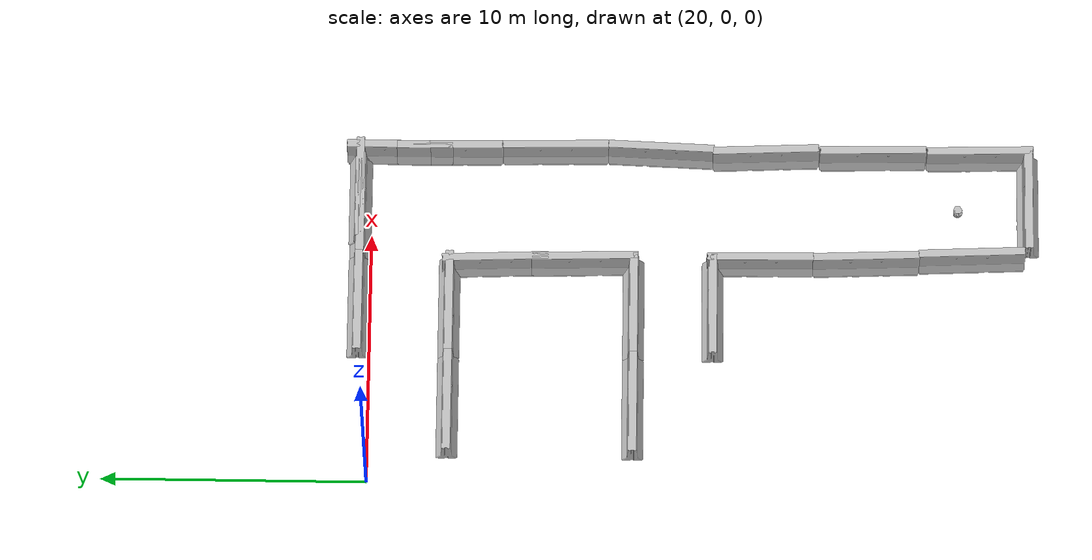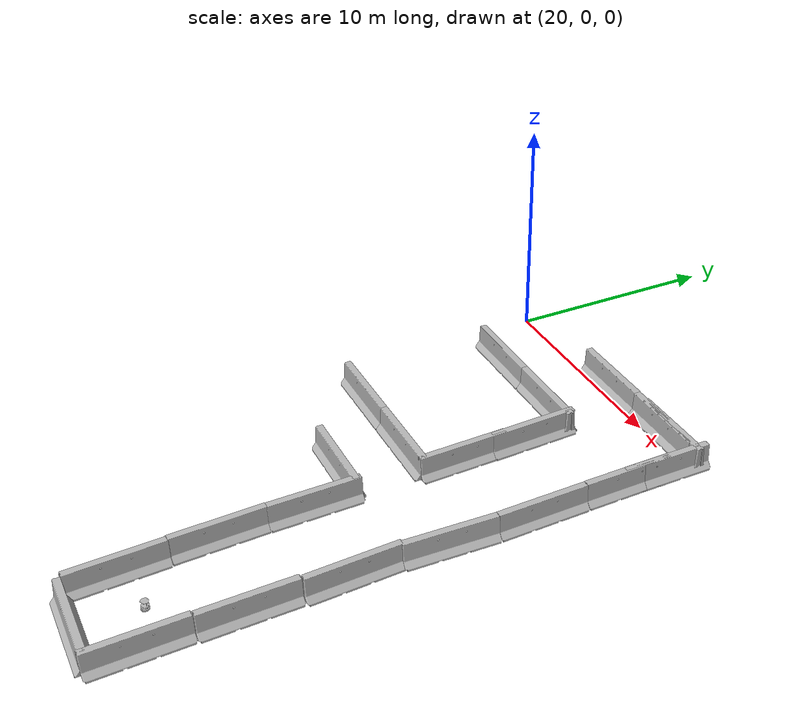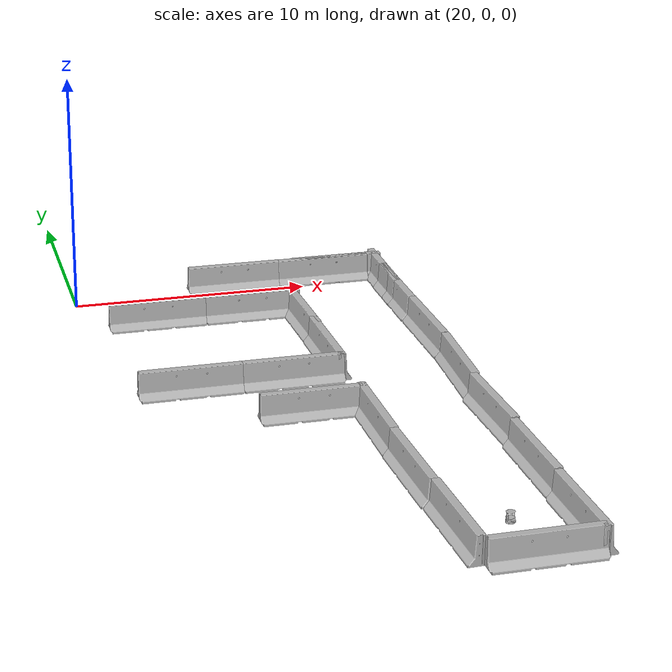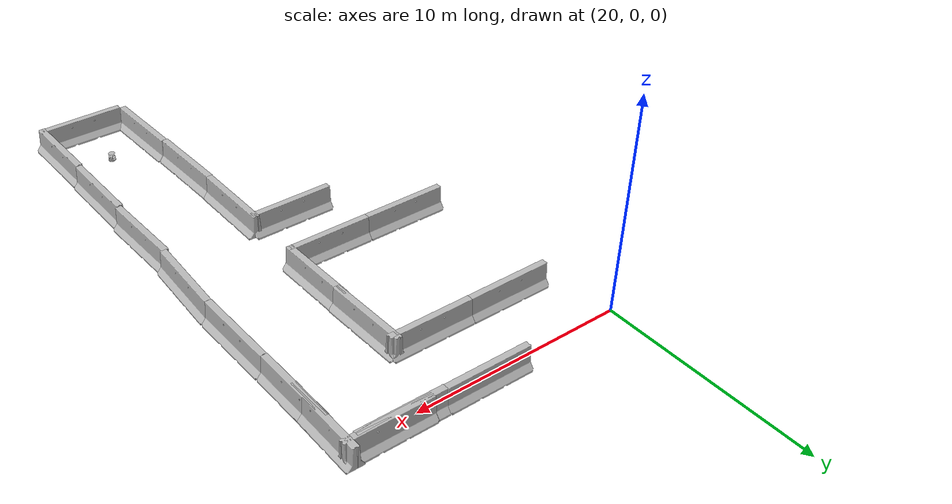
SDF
<sdf version="1.4">
 <world name="default">
  <model name="mobile_base">
   <link name="base_footprint">
    <inertial>
     <pose>-0.00263512 -4.10874e-05 0.129243 0 -0 0</pose>
     <mass>4.6973</mass>
     <inertia>
      <ixx>0.1365</ixx>
      <ixy>-2.51802e-05</ixy>
      <ixz>0.0108194</ixz>
      <iyy>0.132157</iyy>
      <iyz>4.89572e-05</iyz>
      <izz>0.0741648</izz>
     </inertia>
    </inertial>
    <collision name="base_footprint_collision_base_link">
     <pose>0 0 0.06969 0 -0 0</pose>
     <geometry><cylinder><length>0.10938</length><radius>0.178</radius></cylinder></geometry>
     <surface><friction><ode><mu>0.3</mu><mu2>0.3</mu2></ode></friction></surface>
    </collision>
    <collision name="base_footprint_collision_camera_link">
     <pose>-0.087 -0.0015 0.2972 0 -0 0</pose>
     <geometry><box><size>0.073 0.276 0.072</size></box></geometry>
    </collision>
    <collision name="base_footprint_collision_caster_back_link">
     <pose>-0.135 0 0.0192 -1.5708 0 0</pose>
     <geometry><cylinder><length>0.0176</length><radius>0.017</radius></cylinder></geometry>
     <surface>
      <contact><ode><kp>1e+06</kp><kd>100</kd><max_vel>1</max_vel><min_depth>0.001</min_depth></ode></contact>
      <friction><ode><mu>0</mu><mu2>0</mu2></ode></friction>
     </surface>
    </collision>
    <collision name="base_footprint_collision_caster_front_link">
     <pose>0.115 0 0.0172 -1.5708 0 0</pose>
     <geometry><cylinder><length>0.0176</length><radius>0.017</radius></cylinder></geometry>
     <surface>
      <contact><ode><kp>1e+06</kp><kd>100</kd><max_vel>1</max_vel><min_depth>0.001</min_depth></ode></contact>
      <friction><ode><mu>0</mu><mu2>0</mu2></ode></friction>
     </surface>
    </collision>
    <collision name="base_footprint_collision_mount_asus_xtion_pro_link">
     <pose>-0.1024 0 0.2822 0 -0 0</pose>
     <geometry><box><size>0.033 0.276 0.012</size></box></geometry>
    </collision>
    <collision name="base_footprint_collision_plate_bottom_link">
     <pose>0 0 0.1408 0 -0 0</pose>
     <geometry><cylinder><length>0.006</length><radius>0.17</radius></cylinder></geometry>
    </collision>
    <collision name="base_footprint_collision_plate_middle_link">
     <pose>0 0 0.1976 0 -0 0</pose>
     <geometry><cylinder><length>0.006</length><radius>0.17</radius></cylinder></geometry>
    </collision>
    <collision name="base_footprint_collision_plate_top_link">
     <pose>0 0 0.4068 0 -0 0</pose>
     <geometry><cylinder><length>0.006</length><radius>0.17</radius></cylinder></geometry>
    </collision>
    <collision name="base_footprint_collision_pole_bottom_0_link">
     <pose>0.12 0.082 0.113 0 -0 0</pose>
     <geometry><cylinder><length>0.0492</length><radius>0.006</radius></cylinder></geometry>
    </collision>
    <collision name="base_footprint_collision_pole_bottom_1_link">
     <pose>0.055 0.12 0.113 0 -0 0</pose>
     <geometry><cylinder><length>0.0492</length><radius>0.006</radius></cylinder></geometry>
    </collision>
    <collision name="base_footprint_collision_pole_bottom_2_link">
     <pose>-0.055 0.12 0.113 0 -0 0</pose>
     <geometry><cylinder><length>0.0492</length><radius>0.006</radius></cylinder></geometry>
    </collision>
    <collision name="base_footprint_collision_pole_bottom_3_link">
     <pose>0.12 -0.082 0.113 0 -0 0</pose>
     <geometry><cylinder><length>0.0492</length><radius>0.006</radius></cylinder></geometry>
    </collision>
    <collision name="base_footprint_collision_pole_bottom_4_link">
     <pose>0.055 -0.12 0.113 0 -0 0</pose>
     <geometry><cylinder><length>0.0492</length><radius>0.006</radius></cylinder></geometry>
    </collision>
    <collision name="base_footprint_collision_pole_bottom_5_link">
     <pose>-0.055 -0.12 0.113 0 -0 0</pose>
     <geometry><cylinder><length>0.0492</length><radius>0.006</radius></cylinder></geometry>
    </collision>
    <collision name="base_footprint_collision_pole_kinect_0_link">
     <pose>-0.1024 0.098 0.2474 0 -0 0</pose>
     <geometry><cylinder><length>0.0936</length><radius>0.006</radius></cylinder></geometry>
    </collision>
    <collision name="base_footprint_collision_pole_kinect_1_link">
     <pose>-0.1024 -0.098 0.2474 0 -0 0</pose>
     <geometry><cylinder><length>0.0936</length><radius>0.006</radius></cylinder></geometry>
    </collision>
    <collision name="base_footprint_collision_pole_middle_0_link">
     <pose>0.0381 0.1505 0.1742 0 -0 0</pose>
     <geometry><cylinder><length>0.0608</length><radius>0.006</radius></cylinder></geometry>
    </collision>
    <collision name="base_footprint_collision_pole_middle_1_link">
     <pose>0.0381 -0.1505 0.1742 0 -0 0</pose>
     <geometry><cylinder><length>0.0608</length><radius>0.006</radius></cylinder></geometry>
    </collision>
    <collision name="base_footprint_collision_pole_middle_2_link">
     <pose>-0.0381 0.1505 0.1742 0 -0 0</pose>
     <geometry><cylinder><length>0.0608</length><radius>0.006</radius></cylinder></geometry>
    </collision>
    <collision name="base_footprint_collision_pole_middle_3_link">
     <pose>-0.0381 -0.1505 0.1742 0 -0 0</pose>
     <geometry><cylinder><length>0.0608</length><radius>0.006</radius></cylinder></geometry>
    </collision>
    <collision name="base_footprint_collision_pole_top_0_link">
     <pose>0.0381 0.1505 0.3022 0 -0 0</pose>
     <geometry><cylinder><length>0.2032</length><radius>0.006</radius></cylinder></geometry>
    </collision>
    <collision name="base_footprint_collision_pole_top_1_link">
     <pose>0.0381 -0.1505 0.3022 0 -0 0</pose>
     <geometry><cylinder><length>0.2032</length><radius>0.006</radius></cylinder></geometry>
    </collision>
    <collision name="base_footprint_collision_pole_top_2_link">
     <pose>-0.0381 0.1505 0.3022 0 -0 0</pose>
     <geometry><cylinder><length>0.2032</length><radius>0.006</radius></cylinder></geometry>
    </collision>
    <collision name="base_footprint_collision_pole_top_3_link">
     <pose>-0.0381 -0.1505 0.3022 0 -0 0</pose>
     <geometry><cylinder><length>0.2032</length><radius>0.006</radius></cylinder></geometry>
    </collision>
    <visual name="base_footprint_visual_base_link">
     <pose>0.001 0 0.06219 0 -0 0</pose>
     <geometry>
      <mesh><scale>1 1 1</scale><uri>/opt/ros/indigo/share/kobuki_description/meshes/main_body.dae</uri></mesh>
     </geometry>
    </visual>
    <visual name="base_footprint_visual_camera_link">
     <pose>-0.102 0.002 0.3012 0 -0 0</pose>
     <geometry>
      <mesh>
       <scale>1 1 1</scale>
       <uri>/opt/ros/indigo/share/turtlebot_description/meshes/sensors/xtion_pro_camera.dae</uri>
      </mesh>
     </geometry>
    </visual>
    <visual name="base_footprint_visual_mount_asus_xtion_pro_link">
     <pose>-0.1024 0 0.2822 -1.5708 0 0</pose>
     <geometry>
      <mesh>
       <scale>1 1 1</scale>
       <uri>/opt/ros/indigo/share/turtlebot_description/meshes/sensors/xtion_pro_stack.dae</uri>
      </mesh>
     </geometry>
    </visual>
    <visual name="base_footprint_visual_plate_bottom_link">
     <pose>0.02364 0 0.1408 0 -0 0</pose>
     <geometry>
      <mesh>
       <scale>1 1 1</scale>
       <uri>/opt/ros/indigo/share/turtlebot_description/meshes/stacks/hexagons/plate_bottom.dae</uri>
      </mesh>
     </geometry>
    </visual>
    <visual name="base_footprint_visual_plate_middle_link">
     <pose>-0.01364 0 0.1976 0 -0 0</pose>
     <geometry>
      <mesh>
       <scale>1 1 1</scale>
       <uri>/opt/ros/indigo/share/turtlebot_description/meshes/stacks/hexagons/plate_middle.dae</uri>
      </mesh>
     </geometry>
    </visual>
    <visual name="base_footprint_visual_plate_top_link">
     <pose>-0.01364 0 0.4068 0 -0 0</pose>
     <geometry>
      <mesh>
       <scale>1 1 1</scale>
       <uri>/opt/ros/indigo/share/turtlebot_description/meshes/stacks/hexagons/plate_top.dae</uri>
      </mesh>
     </geometry>
    </visual>
    <visual name="base_footprint_visual_pole_bottom_0_link">
     <pose>0.12 0.082 0.113 0 -0 0</pose>
     <geometry>
      <mesh>
       <scale>1 1 1</scale>
       <uri>/opt/ros/indigo/share/turtlebot_description/meshes/stacks/hexagons/pole_bottom.dae</uri>
      </mesh>
     </geometry>
    </visual>
    <visual name="base_footprint_visual_pole_bottom_1_link">
     <pose>0.055 0.12 0.113 0 -0 0</pose>
     <geometry>
      <mesh>
       <scale>1 1 1</scale>
       <uri>/opt/ros/indigo/share/turtlebot_description/meshes/stacks/hexagons/pole_bottom.dae</uri>
      </mesh>
     </geometry>
    </visual>
    <visual name="base_footprint_visual_pole_bottom_2_link">
     <pose>-0.055 0.12 0.113 0 -0 0</pose>
     <geometry>
      <mesh>
       <scale>1 1 1</scale>
       <uri>/opt/ros/indigo/share/turtlebot_description/meshes/stacks/hexagons/pole_bottom.dae</uri>
      </mesh>
     </geometry>
    </visual>
    <visual name="base_footprint_visual_pole_bottom_3_link">
     <pose>0.12 -0.082 0.113 0 -0 0</pose>
     <geometry>
      <mesh>
       <scale>1 1 1</scale>
       <uri>/opt/ros/indigo/share/turtlebot_description/meshes/stacks/hexagons/pole_bottom.dae</uri>
      </mesh>
     </geometry>
    </visual>
    <visual name="base_footprint_visual_pole_bottom_4_link">
     <pose>0.055 -0.12 0.113 0 -0 0</pose>
     <geometry>
      <mesh>
       <scale>1 1 1</scale>
       <uri>/opt/ros/indigo/share/turtlebot_description/meshes/stacks/hexagons/pole_bottom.dae</uri>
      </mesh>
     </geometry>
    </visual>
    <visual name="base_footprint_visual_pole_bottom_5_link">
     <pose>-0.055 -0.12 0.113 0 -0 0</pose>
     <geometry>
      <mesh>
       <scale>1 1 1</scale>
       <uri>/opt/ros/indigo/share/turtlebot_description/meshes/stacks/hexagons/pole_bottom.dae</uri>
      </mesh>
     </geometry>
    </visual>
    <visual name="base_footprint_visual_pole_kinect_0_link">
     <pose>-0.1024 0.098 0.2374 0 -0 0</pose>
     <geometry>
      <mesh>
       <scale>1 1 1</scale>
       <uri>/opt/ros/indigo/share/turtlebot_description/meshes/sensors/sensor_pole.dae</uri>
      </mesh>
     </geometry>
    </visual>
    <visual name="base_footprint_visual_pole_kinect_1_link">
     <pose>-0.1024 -0.098 0.2374 0 -0 0</pose>
     <geometry>
      <mesh>
       <scale>1 1 1</scale>
       <uri>/opt/ros/indigo/share/turtlebot_description/meshes/sensors/sensor_pole.dae</uri>
      </mesh>
     </geometry>
    </visual>
    <visual name="base_footprint_visual_pole_middle_0_link">
     <pose>0.0381 0.1505 0.1742 3.14159 -2.06823e-13 3.14159</pose>
     <geometry>
      <mesh>
       <scale>1 1 1</scale>
       <uri>/opt/ros/indigo/share/turtlebot_description/meshes/stacks/hexagons/pole_middle.dae</uri>
      </mesh>
     </geometry>
    </visual>
    <visual name="base_footprint_visual_pole_middle_1_link">
     <pose>0.0381 -0.1505 0.1742 3.14159 -2.06823e-13 3.14159</pose>
     <geometry>
      <mesh>
       <scale>1 1 1</scale>
       <uri>/opt/ros/indigo/share/turtlebot_description/meshes/stacks/hexagons/pole_middle.dae</uri>
      </mesh>
     </geometry>
    </visual>
    <visual name="base_footprint_visual_pole_middle_2_link">
     <pose>-0.0381 0.1505 0.1742 3.14159 -2.06823e-13 3.14159</pose>
     <geometry>
      <mesh>
       <scale>1 1 1</scale>
       <uri>/opt/ros/indigo/share/turtlebot_description/meshes/stacks/hexagons/pole_middle.dae</uri>
      </mesh>
     </geometry>
    </visual>
    <visual name="base_footprint_visual_pole_middle_3_link">
     <pose>-0.0381 -0.1505 0.1742 3.14159 -2.06823e-13 3.14159</pose>
     <geometry>
      <mesh>
       <scale>1 1 1</scale>
       <uri>/opt/ros/indigo/share/turtlebot_description/meshes/stacks/hexagons/pole_middle.dae</uri>
      </mesh>
     </geometry>
    </visual>
    <visual name="base_footprint_visual_pole_top_0_link">
     <pose>0.0381 0.1505 0.3022 0 -0 0</pose>
     <geometry>
      <mesh>
       <scale>1 1 1</scale>
       <uri>/opt/ros/indigo/share/turtlebot_description/meshes/stacks/hexagons/pole_top.dae</uri>
      </mesh>
     </geometry>
    </visual>
    <visual name="base_footprint_visual_pole_top_1_link">
     <pose>0.0381 -0.1505 0.3022 0 -0 0</pose>
     <geometry>
      <mesh>
       <scale>1 1 1</scale>
       <uri>/opt/ros/indigo/share/turtlebot_description/meshes/stacks/hexagons/pole_top.dae</uri>
      </mesh>
     </geometry>
    </visual>
    <visual name="base_footprint_visual_pole_top_2_link">
     <pose>-0.0381 0.1505 0.3022 0 -0 0</pose>
     <geometry>
      <mesh>
       <scale>1 1 1</scale>
       <uri>/opt/ros/indigo/share/turtlebot_description/meshes/stacks/hexagons/pole_top.dae</uri>
      </mesh>
     </geometry>
    </visual>
    <visual name="base_footprint_visual_pole_top_3_link">
     <pose>-0.0381 -0.1505 0.3022 0 -0 0</pose>
     <geometry>
      <mesh>
       <scale>1 1 1</scale>
       <uri>/opt/ros/indigo/share/turtlebot_description/meshes/stacks/hexagons/pole_top.dae</uri>
      </mesh>
     </geometry>
    </visual>
    <velocity_decay><linear>0</linear><angular>0</angular></velocity_decay>
    <sensor name="bumpers" type="contact">
     <always_on>1</always_on>
     <update_rate>50</update_rate>
     <visualize>1</visualize>
     <contact><collision>base_footprint_collision_base_link</collision><topic>__default_topic__</topic></contact>
     <pose>0 0 0.0102 0 -0 0</pose>
    </sensor>
    <velocity_decay><linear>0</linear><angular>0</angular></velocity_decay>
    <sensor name="camera" type="depth">
     <always_on>1</always_on>
     <update_rate>20</update_rate>
     <camera name="__default__">
      <horizontal_fov>1.0472</horizontal_fov>
      <image><format>B8G8R8</format><width>640</width><height>480</height></image>
      <clip><near>0.05</near><far>8</far></clip>
     </camera>
     <plugin name="kinect_camera_controller" filename="libgazebo_ros_openni_kinect.so">
      <cameraName>camera</cameraName>
      <alwaysOn>true</alwaysOn>
      <updateRate>10</updateRate>
      <imageTopicName>rgb/image_raw</imageTopicName>
      <depthImageTopicName>depth/image_raw</depthImageTopicName>
      <pointCloudTopicName>depth/points</pointCloudTopicName>
      <cameraInfoTopicName>rgb/camera_info</cameraInfoTopicName>
      <depthImageCameraInfoTopicName>depth/camera_info</depthImageCameraInfoTopicName>
      <frameName>camera_depth_optical_frame</frameName>
      <baseline>0.1</baseline>
      <distortion_k1>0.0</distortion_k1>
      <distortion_k2>0.0</distortion_k2>
      <distortion_k3>0.0</distortion_k3>
      <distortion_t1>0.0</distortion_t1>
      <distortion_t2>0.0</distortion_t2>
      <pointCloudCutoff>0.4</pointCloudCutoff>
      <robotNamespace>/</robotNamespace>
     </plugin>
     <pose>-0.087 -0.0015 0.2972 0 -0 0</pose>
    </sensor>
    <velocity_decay><linear>0</linear><angular>0</angular></velocity_decay>
    <velocity_decay><linear>0</linear><angular>0</angular></velocity_decay>
    <velocity_decay><linear>0</linear><angular>0</angular></velocity_decay>
    <sensor name="cliff_sensor_front" type="ray">
     <always_on>1</always_on>
     <update_rate>50</update_rate>
     <visualize>1</visualize>
     <ray>
      <scan>
       <horizontal>
        <samples>50</samples>
        <resolution>1</resolution>
        <min_angle>-0.0436</min_angle>
        <max_angle>0.0436</max_angle>
       </horizontal>
      </scan>
      <range><min>0.01</min><max>0.15</max><resolution>1</resolution></range>
     </ray>
     <pose>0.156 0 0.0316 3.14159 1.57079 3.14159</pose>
    </sensor>
    <velocity_decay><linear>0</linear><angular>0</angular></velocity_decay>
    <sensor name="cliff_sensor_left" type="ray">
     <always_on>1</always_on>
     <update_rate>50</update_rate>
     <visualize>1</visualize>
     <ray>
      <scan>
       <horizontal>
        <samples>50</samples>
        <resolution>1</resolution>
        <min_angle>-0.0436</min_angle>
        <max_angle>0.0436</max_angle>
       </horizontal>
      </scan>
      <range><min>0.01</min><max>0.15</max><resolution>1</resolution></range>
     </ray>
     <pose>0.08734 0.13601 0.0316 3.14159 1.57079 3.14159</pose>
    </sensor>
    <velocity_decay><linear>0</linear><angular>0</angular></velocity_decay>
    <sensor name="cliff_sensor_right" type="ray">
     <always_on>1</always_on>
     <update_rate>50</update_rate>
     <visualize>1</visualize>
     <ray>
      <scan>
       <horizontal>
        <samples>50</samples>
        <resolution>1</resolution>
        <min_angle>-0.0436</min_angle>
        <max_angle>0.0436</max_angle>
       </horizontal>
      </scan>
      <range><min>0.01</min><max>0.15</max><resolution>1</resolution></range>
     </ray>
     <pose>0.085 -0.13601 0.0316 3.14159 1.57079 3.14159</pose>
    </sensor>
    <velocity_decay><linear>0</linear><angular>0</angular></velocity_decay>
    <sensor name="imu" type="imu">
     <always_on>1</always_on>
     <update_rate>50</update_rate>
     <visualize>0</visualize>
     <imu>
      <noise>
       <type>gaussian</type>
       <rate><mean>0</mean><stddev>1.96e-06</stddev><bias_mean>0</bias_mean><bias_stddev>0</bias_stddev></rate>
       <accel><mean>0</mean><stddev>0.017</stddev><bias_mean>0.1</bias_mean><bias_stddev>0.001</bias_stddev></accel>
      </noise>
     </imu>
     <pose>0.056 0.062 0.0304 0 -0 0</pose>
    </sensor>
   </link>
   <link name="wheel_left_link">
    <pose>0 0.115 0.0352 -1.5708 0 0</pose>
    <inertial>
     <mass>0.01</mass>
     <inertia><ixx>0.001</ixx><ixy>0</ixy><ixz>0</ixz><iyy>0.001</iyy><iyz>0</iyz><izz>0.001</izz></inertia>
    </inertial>
    <collision name="wheel_left_link_collision">
     <geometry><cylinder><length>0.0206</length><radius>0.0352</radius></cylinder></geometry>
     <surface>
      <contact><ode><kp>1e+06</kp><kd>100</kd><max_vel>1</max_vel><min_depth>0.001</min_depth></ode></contact>
      <friction><ode><mu>1</mu><mu2>1</mu2></ode></friction>
     </surface>
    </collision>
    <visual name="wheel_left_link_visual">
     <geometry>
      <mesh><scale>1 1 1</scale><uri>/opt/ros/indigo/share/kobuki_description/meshes/wheel.dae</uri></mesh>
     </geometry>
    </visual>
    <velocity_decay><linear>0</linear><angular>0</angular></velocity_decay>
   </link>
   <joint name="wheel_left_joint" type="revolute">
    <child>wheel_left_link</child>
    <parent>base_footprint</parent>
    <axis><xyz>0 1 0</xyz><limit><lower>-1e+16</lower><upper>1e+16</upper></limit></axis>
   </joint>
   <link name="wheel_right_link">
    <pose>0 -0.115 0.0352 -1.5708 0 0</pose>
    <inertial>
     <mass>0.01</mass>
     <inertia><ixx>0.001</ixx><ixy>0</ixy><ixz>0</ixz><iyy>0.001</iyy><iyz>0</iyz><izz>0.001</izz></inertia>
    </inertial>
    <collision name="wheel_right_link_collision">
     <geometry><cylinder><length>0.0206</length><radius>0.035</radius></cylinder></geometry>
     <surface>
      <contact><ode><kp>1e+06</kp><kd>100</kd><max_vel>1</max_vel><min_depth>0.001</min_depth></ode></contact>
      <friction><ode><mu>1</mu><mu2>1</mu2></ode></friction>
     </surface>
    </collision>
    <visual name="wheel_right_link_visual">
     <geometry>
      <mesh><scale>1 1 1</scale><uri>/opt/ros/indigo/share/kobuki_description/meshes/wheel.dae</uri></mesh>
     </geometry>
    </visual>
    <velocity_decay><linear>0</linear><angular>0</angular></velocity_decay>
   </link>
   <joint name="wheel_right_joint" type="revolute">
    <child>wheel_right_link</child>
    <parent>base_footprint</parent>
    <axis><xyz>0 1 0</xyz><limit><lower>-1e+16</lower><upper>1e+16</upper></limit></axis>
   </joint>
   <static>0</static>
   <plugin name="kobuki_controller" filename="libgazebo_ros_kobuki.so">
    <publish_tf>1</publish_tf>
    <left_wheel_joint_name>wheel_left_joint</left_wheel_joint_name>
    <right_wheel_joint_name>wheel_right_joint</right_wheel_joint_name>
    <wheel_separation>.230</wheel_separation>
    <wheel_diameter>0.070</wheel_diameter>
    <torque>1.0</torque>
    <velocity_command_timeout>0.6</velocity_command_timeout>
    <cliff_sensor_left_name>cliff_sensor_left</cliff_sensor_left_name>
    <cliff_sensor_center_name>cliff_sensor_front</cliff_sensor_center_name>
    <cliff_sensor_right_name>cliff_sensor_right</cliff_sensor_right_name>
    <cliff_detection_threshold>0.04</cliff_detection_threshold>
    <bumper_name>bumpers</bumper_name>
    <imu_name>imu</imu_name>
    <robotNamespace>/</robotNamespace>
   </plugin>
   <pose>31.2241 -22.3365 -0.001131 6e-05 -0.007997 -1.09406</pose>
  </model>
  <model name="jersey_barrier_26">
   <static>1</static>
   <link name="link">
    <visual name="visual">
     <geometry><mesh><uri>model://jersey_barrier/meshes/jersey_barrier.dae</uri></mesh></geometry>
    </visual>
    <collision name="upright">
     <pose>0 0 0.5715 0 -0 0</pose>
     <geometry><box><size>4.06542 0.3063 1.143</size></box></geometry>
    </collision>
    <collision name="base">
     <pose>0 0 0.032258 0 -0 0</pose>
     <geometry><box><size>4.06542 0.8107 0.064516</size></box></geometry>
    </collision>
    <collision name="base2">
     <pose>0 0 0.1 0 -0 0</pose>
     <geometry><box><size>4.06542 0.65 0.1</size></box></geometry>
    </collision>
    <collision name="base3">
     <pose>0 0 0.2 0 -0 0</pose>
     <geometry><box><size>4.06542 0.5 0.1</size></box></geometry>
    </collision>
    <collision name="left-angle">
     <pose>0 -0.224 0.2401 0.9 -0 0</pose>
     <geometry><box><size>4.06542 0.5 0.064516</size></box></geometry>
    </collision>
    <collision name="right-angle">
     <pose>0 0.224 0.2401 -0.9 0 0</pose>
     <geometry><box><size>4.06542 0.5 0.064516</size></box></geometry>
    </collision>
    <velocity_decay><linear>0</linear><angular>0</angular></velocity_decay>
   </link>
   <pose>27 -13 0 0 -0 0</pose>
  </model>
  <model name="jersey_barrier_27">
   <static>1</static>
   <link name="link">
    <visual name="visual">
     <geometry><mesh><uri>model://jersey_barrier/meshes/jersey_barrier.dae</uri></mesh></geometry>
    </visual>
    <collision name="upright">
     <pose>0 0 0.5715 0 -0 0</pose>
     <geometry><box><size>4.06542 0.3063 1.143</size></box></geometry>
    </collision>
    <collision name="base">
     <pose>0 0 0.032258 0 -0 0</pose>
     <geometry><box><size>4.06542 0.8107 0.064516</size></box></geometry>
    </collision>
    <collision name="base2">
     <pose>0 0 0.1 0 -0 0</pose>
     <geometry><box><size>4.06542 0.65 0.1</size></box></geometry>
    </collision>
    <collision name="base3">
     <pose>0 0 0.2 0 -0 0</pose>
     <geometry><box><size>4.06542 0.5 0.1</size></box></geometry>
    </collision>
    <collision name="left-angle">
     <pose>0 -0.224 0.2401 0.9 -0 0</pose>
     <geometry><box><size>4.06542 0.5 0.064516</size></box></geometry>
    </collision>
    <collision name="right-angle">
     <pose>0 0.224 0.2401 -0.9 0 0</pose>
     <geometry><box><size>4.06542 0.5 0.064516</size></box></geometry>
    </collision>
    <velocity_decay><linear>0</linear><angular>0</angular></velocity_decay>
   </link>
   <pose>28.9196 -14.7976 0 0 0 -1.5596</pose>
  </model>
  <model name="jersey_barrier_28">
   <static>1</static>
   <link name="link">
    <visual name="visual">
     <geometry><mesh><uri>model://jersey_barrier/meshes/jersey_barrier.dae</uri></mesh></geometry>
    </visual>
    <collision name="upright">
     <pose>0 0 0.5715 0 -0 0</pose>
     <geometry><box><size>4.06542 0.3063 1.143</size></box></geometry>
    </collision>
    <collision name="base">
     <pose>0 0 0.032258 0 -0 0</pose>
     <geometry><box><size>4.06542 0.8107 0.064516</size></box></geometry>
    </collision>
    <collision name="base2">
     <pose>0 0 0.1 0 -0 0</pose>
     <geometry><box><size>4.06542 0.65 0.1</size></box></geometry>
    </collision>
    <collision name="base3">
     <pose>0 0 0.2 0 -0 0</pose>
     <geometry><box><size>4.06542 0.5 0.1</size></box></geometry>
    </collision>
    <collision name="left-angle">
     <pose>0 -0.224 0.2401 0.9 -0 0</pose>
     <geometry><box><size>4.06542 0.5 0.064516</size></box></geometry>
    </collision>
    <collision name="right-angle">
     <pose>0 0.224 0.2401 -0.9 0 0</pose>
     <geometry><box><size>4.06542 0.5 0.064516</size></box></geometry>
    </collision>
    <velocity_decay><linear>0</linear><angular>0</angular></velocity_decay>
   </link>
   <pose>28.9929 -18.8026 0 0 0 -1.53451</pose>
  </model>
  <model name="jersey_barrier_29">
   <static>1</static>
   <link name="link">
    <visual name="visual">
     <geometry><mesh><uri>model://jersey_barrier/meshes/jersey_barrier.dae</uri></mesh></geometry>
    </visual>
    <collision name="upright">
     <pose>0 0 0.5715 0 -0 0</pose>
     <geometry><box><size>4.06542 0.3063 1.143</size></box></geometry>
    </collision>
    <collision name="base">
     <pose>0 0 0.032258 0 -0 0</pose>
     <geometry><box><size>4.06542 0.8107 0.064516</size></box></geometry>
    </collision>
    <collision name="base2">
     <pose>0 0 0.1 0 -0 0</pose>
     <geometry><box><size>4.06542 0.65 0.1</size></box></geometry>
    </collision>
    <collision name="base3">
     <pose>0 0 0.2 0 -0 0</pose>
     <geometry><box><size>4.06542 0.5 0.1</size></box></geometry>
    </collision>
    <collision name="left-angle">
     <pose>0 -0.224 0.2401 0.9 -0 0</pose>
     <geometry><box><size>4.06542 0.5 0.064516</size></box></geometry>
    </collision>
    <collision name="right-angle">
     <pose>0 0.224 0.2401 -0.9 0 0</pose>
     <geometry><box><size>4.06542 0.5 0.064516</size></box></geometry>
    </collision>
    <velocity_decay><linear>0</linear><angular>0</angular></velocity_decay>
   </link>
   <pose>29.1932 -22.8172 0 0 0 -1.52952</pose>
  </model>
  <model name="jersey_barrier_30">
   <static>1</static>
   <link name="link">
    <visual name="visual">
     <geometry><mesh><uri>model://jersey_barrier/meshes/jersey_barrier.dae</uri></mesh></geometry>
    </visual>
    <collision name="upright">
     <pose>0 0 0.5715 0 -0 0</pose>
     <geometry><box><size>4.06542 0.3063 1.143</size></box></geometry>
    </collision>
    <collision name="base">
     <pose>0 0 0.032258 0 -0 0</pose>
     <geometry><box><size>4.06542 0.8107 0.064516</size></box></geometry>
    </collision>
    <collision name="base2">
     <pose>0 0 0.1 0 -0 0</pose>
     <geometry><box><size>4.06542 0.65 0.1</size></box></geometry>
    </collision>
    <collision name="base3">
     <pose>0 0 0.2 0 -0 0</pose>
     <geometry><box><size>4.06542 0.5 0.1</size></box></geometry>
    </collision>
    <collision name="left-angle">
     <pose>0 -0.224 0.2401 0.9 -0 0</pose>
     <geometry><box><size>4.06542 0.5 0.064516</size></box></geometry>
    </collision>
    <collision name="right-angle">
     <pose>0 0.224 0.2401 -0.9 0 0</pose>
     <geometry><box><size>4.06542 0.5 0.064516</size></box></geometry>
    </collision>
    <velocity_decay><linear>0</linear><angular>0</angular></velocity_decay>
   </link>
   <pose>31.4277 -25 0 0 -0 0</pose>
  </model>
  <model name="jersey_barrier_31">
   <static>1</static>
   <link name="link">
    <visual name="visual">
     <geometry><mesh><uri>model://jersey_barrier/meshes/jersey_barrier.dae</uri></mesh></geometry>
    </visual>
    <collision name="upright">
     <pose>0 0 0.5715 0 -0 0</pose>
     <geometry><box><size>4.06542 0.3063 1.143</size></box></geometry>
    </collision>
    <collision name="base">
     <pose>0 0 0.032258 0 -0 0</pose>
     <geometry><box><size>4.06542 0.8107 0.064516</size></box></geometry>
    </collision>
    <collision name="base2">
     <pose>0 0 0.1 0 -0 0</pose>
     <geometry><box><size>4.06542 0.65 0.1</size></box></geometry>
    </collision>
    <collision name="base3">
     <pose>0 0 0.2 0 -0 0</pose>
     <geometry><box><size>4.06542 0.5 0.1</size></box></geometry>
    </collision>
    <collision name="left-angle">
     <pose>0 -0.224 0.2401 0.9 -0 0</pose>
     <geometry><box><size>4.06542 0.5 0.064516</size></box></geometry>
    </collision>
    <collision name="right-angle">
     <pose>0 0.224 0.2401 -0.9 0 0</pose>
     <geometry><box><size>4.06542 0.5 0.064516</size></box></geometry>
    </collision>
    <velocity_decay><linear>0</linear><angular>0</angular></velocity_decay>
   </link>
   <pose>33.3776 -23.1633 0 0 0 -1.54786</pose>
  </model>
  <model name="jersey_barrier_32">
   <static>1</static>
   <link name="link">
    <visual name="visual">
     <geometry><mesh><uri>model://jersey_barrier/meshes/jersey_barrier.dae</uri></mesh></geometry>
    </visual>
    <collision name="upright">
     <pose>0 0 0.5715 0 -0 0</pose>
     <geometry><box><size>4.06542 0.3063 1.143</size></box></geometry>
    </collision>
    <collision name="base">
     <pose>0 0 0.032258 0 -0 0</pose>
     <geometry><box><size>4.06542 0.8107 0.064516</size></box></geometry>
    </collision>
    <collision name="base2">
     <pose>0 0 0.1 0 -0 0</pose>
     <geometry><box><size>4.06542 0.65 0.1</size></box></geometry>
    </collision>
    <collision name="base3">
     <pose>0 0 0.2 0 -0 0</pose>
     <geometry><box><size>4.06542 0.5 0.1</size></box></geometry>
    </collision>
    <collision name="left-angle">
     <pose>0 -0.224 0.2401 0.9 -0 0</pose>
     <geometry><box><size>4.06542 0.5 0.064516</size></box></geometry>
    </collision>
    <collision name="right-angle">
     <pose>0 0.224 0.2401 -0.9 0 0</pose>
     <geometry><box><size>4.06542 0.5 0.064516</size></box></geometry>
    </collision>
    <velocity_decay><linear>0</linear><angular>0</angular></velocity_decay>
   </link>
   <pose>33.3503 -19.0793 0 0 0 -1.55266</pose>
  </model>
  <model name="jersey_barrier_33">
   <static>1</static>
   <link name="link">
    <visual name="visual">
     <geometry><mesh><uri>model://jersey_barrier/meshes/jersey_barrier.dae</uri></mesh></geometry>
    </visual>
    <collision name="upright">
     <pose>0 0 0.5715 0 -0 0</pose>
     <geometry><box><size>4.06542 0.3063 1.143</size></box></geometry>
    </collision>
    <collision name="base">
     <pose>0 0 0.032258 0 -0 0</pose>
     <geometry><box><size>4.06542 0.8107 0.064516</size></box></geometry>
    </collision>
    <collision name="base2">
     <pose>0 0 0.1 0 -0 0</pose>
     <geometry><box><size>4.06542 0.65 0.1</size></box></geometry>
    </collision>
    <collision name="base3">
     <pose>0 0 0.2 0 -0 0</pose>
     <geometry><box><size>4.06542 0.5 0.1</size></box></geometry>
    </collision>
    <collision name="left-angle">
     <pose>0 -0.224 0.2401 0.9 -0 0</pose>
     <geometry><box><size>4.06542 0.5 0.064516</size></box></geometry>
    </collision>
    <collision name="right-angle">
     <pose>0 0.224 0.2401 -0.9 0 0</pose>
     <geometry><box><size>4.06542 0.5 0.064516</size></box></geometry>
    </collision>
    <velocity_decay><linear>0</linear><angular>0</angular></velocity_decay>
   </link>
   <pose>33.3211 -14.9907 0 -0.001678 0.001027 -1.53086</pose>
  </model>
  <model name="jersey_barrier_34">
   <static>1</static>
   <link name="link">
    <visual name="visual">
     <geometry><mesh><uri>model://jersey_barrier/meshes/jersey_barrier.dae</uri></mesh></geometry>
    </visual>
    <collision name="upright">
     <pose>0 0 0.5715 0 -0 0</pose>
     <geometry><box><size>4.06542 0.3063 1.143</size></box></geometry>
    </collision>
    <collision name="base">
     <pose>0 0 0.032258 0 -0 0</pose>
     <geometry><box><size>4.06542 0.8107 0.064516</size></box></geometry>
    </collision>
    <collision name="base2">
     <pose>0 0 0.1 0 -0 0</pose>
     <geometry><box><size>4.06542 0.65 0.1</size></box></geometry>
    </collision>
    <collision name="base3">
     <pose>0 0 0.2 0 -0 0</pose>
     <geometry><box><size>4.06542 0.5 0.1</size></box></geometry>
    </collision>
    <collision name="left-angle">
     <pose>0 -0.224 0.2401 0.9 -0 0</pose>
     <geometry><box><size>4.06542 0.5 0.064516</size></box></geometry>
    </collision>
    <collision name="right-angle">
     <pose>0 0.224 0.2401 -0.9 0 0</pose>
     <geometry><box><size>4.06542 0.5 0.064516</size></box></geometry>
    </collision>
    <velocity_decay><linear>0</linear><angular>0</angular></velocity_decay>
   </link>
   <pose>33.4056 -11.0012 0 0 0 -1.61082</pose>
  </model>
  <model name="jersey_barrier_35">
   <static>1</static>
   <link name="link">
    <visual name="visual">
     <geometry><mesh><uri>model://jersey_barrier/meshes/jersey_barrier.dae</uri></mesh></geometry>
    </visual>
    <collision name="upright">
     <pose>0 0 0.5715 0 -0 0</pose>
     <geometry><box><size>4.06542 0.3063 1.143</size></box></geometry>
    </collision>
    <collision name="base">
     <pose>0 0 0.032258 0 -0 0</pose>
     <geometry><box><size>4.06542 0.8107 0.064516</size></box></geometry>
    </collision>
    <collision name="base2">
     <pose>0 0 0.1 0 -0 0</pose>
     <geometry><box><size>4.06542 0.65 0.1</size></box></geometry>
    </collision>
    <collision name="base3">
     <pose>0 0 0.2 0 -0 0</pose>
     <geometry><box><size>4.06542 0.5 0.1</size></box></geometry>
    </collision>
    <collision name="left-angle">
     <pose>0 -0.224 0.2401 0.9 -0 0</pose>
     <geometry><box><size>4.06542 0.5 0.064516</size></box></geometry>
    </collision>
    <collision name="right-angle">
     <pose>0 0.224 0.2401 -0.9 0 0</pose>
     <geometry><box><size>4.06542 0.5 0.064516</size></box></geometry>
    </collision>
    <velocity_decay><linear>0</linear><angular>0</angular></velocity_decay>
   </link>
   <pose>33.4445 -6.97747 0 0 0 -1.55337</pose>
  </model>
  <model name="jersey_barrier_36">
   <static>1</static>
   <link name="link">
    <visual name="visual">
     <geometry><mesh><uri>model://jersey_barrier/meshes/jersey_barrier.dae</uri></mesh></geometry>
    </visual>
    <collision name="upright">
     <pose>0 0 0.5715 0 -0 0</pose>
     <geometry><box><size>4.06542 0.3063 1.143</size></box></geometry>
    </collision>
    <collision name="base">
     <pose>0 0 0.032258 0 -0 0</pose>
     <geometry><box><size>4.06542 0.8107 0.064516</size></box></geometry>
    </collision>
    <collision name="base2">
     <pose>0 0 0.1 0 -0 0</pose>
     <geometry><box><size>4.06542 0.65 0.1</size></box></geometry>
    </collision>
    <collision name="base3">
     <pose>0 0 0.2 0 -0 0</pose>
     <geometry><box><size>4.06542 0.5 0.1</size></box></geometry>
    </collision>
    <collision name="left-angle">
     <pose>0 -0.224 0.2401 0.9 -0 0</pose>
     <geometry><box><size>4.06542 0.5 0.064516</size></box></geometry>
    </collision>
    <collision name="right-angle">
     <pose>0 0.224 0.2401 -0.9 0 0</pose>
     <geometry><box><size>4.06542 0.5 0.064516</size></box></geometry>
    </collision>
    <velocity_decay><linear>0</linear><angular>0</angular></velocity_decay>
   </link>
   <pose>33.3725 -2.9318 0 0 -0 1.58165</pose>
  </model>
  <model name="jersey_barrier_40">
   <static>1</static>
   <link name="link">
    <visual name="visual">
     <geometry><mesh><uri>model://jersey_barrier/meshes/jersey_barrier.dae</uri></mesh></geometry>
    </visual>
    <collision name="upright">
     <pose>0 0 0.5715 0 -0 0</pose>
     <geometry><box><size>4.06542 0.3063 1.143</size></box></geometry>
    </collision>
    <collision name="base">
     <pose>0 0 0.032258 0 -0 0</pose>
     <geometry><box><size>4.06542 0.8107 0.064516</size></box></geometry>
    </collision>
    <collision name="base2">
     <pose>0 0 0.1 0 -0 0</pose>
     <geometry><box><size>4.06542 0.65 0.1</size></box></geometry>
    </collision>
    <collision name="base3">
     <pose>0 0 0.2 0 -0 0</pose>
     <geometry><box><size>4.06542 0.5 0.1</size></box></geometry>
    </collision>
    <collision name="left-angle">
     <pose>0 -0.224 0.2401 0.9 -0 0</pose>
     <geometry><box><size>4.06542 0.5 0.064516</size></box></geometry>
    </collision>
    <collision name="right-angle">
     <pose>0 0.224 0.2401 -0.9 0 0</pose>
     <geometry><box><size>4.06542 0.5 0.064516</size></box></geometry>
    </collision>
    <velocity_decay><linear>0</linear><angular>0</angular></velocity_decay>
   </link>
   <pose>27 0.444128 0 0 -0 0</pose>
  </model>
  <model name="jersey_barrier_41">
   <static>1</static>
   <link name="link">
    <visual name="visual">
     <geometry><mesh><uri>model://jersey_barrier/meshes/jersey_barrier.dae</uri></mesh></geometry>
    </visual>
    <collision name="upright">
     <pose>0 0 0.5715 0 -0 0</pose>
     <geometry><box><size>4.06542 0.3063 1.143</size></box></geometry>
    </collision>
    <collision name="base">
     <pose>0 0 0.032258 0 -0 0</pose>
     <geometry><box><size>4.06542 0.8107 0.064516</size></box></geometry>
    </collision>
    <collision name="base2">
     <pose>0 0 0.1 0 -0 0</pose>
     <geometry><box><size>4.06542 0.65 0.1</size></box></geometry>
    </collision>
    <collision name="base3">
     <pose>0 0 0.2 0 -0 0</pose>
     <geometry><box><size>4.06542 0.5 0.1</size></box></geometry>
    </collision>
    <collision name="left-angle">
     <pose>0 -0.224 0.2401 0.9 -0 0</pose>
     <geometry><box><size>4.06542 0.5 0.064516</size></box></geometry>
    </collision>
    <collision name="right-angle">
     <pose>0 0.224 0.2401 -0.9 0 0</pose>
     <geometry><box><size>4.06542 0.5 0.064516</size></box></geometry>
    </collision>
    <velocity_decay><linear>0</linear><angular>0</angular></velocity_decay>
   </link>
   <pose>31 0.422256 0 0 -0 0</pose>
  </model>
  <model name="jersey_barrier_42">
   <static>1</static>
   <link name="link">
    <visual name="visual">
     <geometry><mesh><uri>model://jersey_barrier/meshes/jersey_barrier.dae</uri></mesh></geometry>
    </visual>
    <collision name="upright">
     <pose>0 0 0.5715 0 -0 0</pose>
     <geometry><box><size>4.06542 0.3063 1.143</size></box></geometry>
    </collision>
    <collision name="base">
     <pose>0 0 0.032258 0 -0 0</pose>
     <geometry><box><size>4.06542 0.8107 0.064516</size></box></geometry>
    </collision>
    <collision name="base2">
     <pose>0 0 0.1 0 -0 0</pose>
     <geometry><box><size>4.06542 0.65 0.1</size></box></geometry>
    </collision>
    <collision name="base3">
     <pose>0 0 0.2 0 -0 0</pose>
     <geometry><box><size>4.06542 0.5 0.1</size></box></geometry>
    </collision>
    <collision name="left-angle">
     <pose>0 -0.224 0.2401 0.9 -0 0</pose>
     <geometry><box><size>4.06542 0.5 0.064516</size></box></geometry>
    </collision>
    <collision name="right-angle">
     <pose>0 0.224 0.2401 -0.9 0 0</pose>
     <geometry><box><size>4.06542 0.5 0.064516</size></box></geometry>
    </collision>
    <velocity_decay><linear>0</linear><angular>0</angular></velocity_decay>
   </link>
   <pose>31.6119 0.470499 0 0 -0 0</pose>
  </model>
  <model name="jersey_barrier_43">
   <static>1</static>
   <link name="link">
    <visual name="visual">
     <geometry><mesh><uri>model://jersey_barrier/meshes/jersey_barrier.dae</uri></mesh></geometry>
    </visual>
    <collision name="upright">
     <pose>0 0 0.5715 0 -0 0</pose>
     <geometry><box><size>4.06542 0.3063 1.143</size></box></geometry>
    </collision>
    <collision name="base">
     <pose>0 0 0.032258 0 -0 0</pose>
     <geometry><box><size>4.06542 0.8107 0.064516</size></box></geometry>
    </collision>
    <collision name="base2">
     <pose>0 0 0.1 0 -0 0</pose>
     <geometry><box><size>4.06542 0.65 0.1</size></box></geometry>
    </collision>
    <collision name="base3">
     <pose>0 0 0.2 0 -0 0</pose>
     <geometry><box><size>4.06542 0.5 0.1</size></box></geometry>
    </collision>
    <collision name="left-angle">
     <pose>0 -0.224 0.2401 0.9 -0 0</pose>
     <geometry><box><size>4.06542 0.5 0.064516</size></box></geometry>
    </collision>
    <collision name="right-angle">
     <pose>0 0.224 0.2401 -0.9 0 0</pose>
     <geometry><box><size>4.06542 0.5 0.064516</size></box></geometry>
    </collision>
    <velocity_decay><linear>0</linear><angular>0</angular></velocity_decay>
   </link>
   <pose>33.3694 -1.03954 0 0 -0 1.5666</pose>
  </model>
  <model name="jersey_barrier_46">
   <static>1</static>
   <link name="link">
    <visual name="visual">
     <geometry><mesh><uri>model://jersey_barrier/meshes/jersey_barrier.dae</uri></mesh></geometry>
    </visual>
    <collision name="upright">
     <pose>0 0 0.5715 0 -0 0</pose>
     <geometry><box><size>4.06542 0.3063 1.143</size></box></geometry>
    </collision>
    <collision name="base">
     <pose>0 0 0.032258 0 -0 0</pose>
     <geometry><box><size>4.06542 0.8107 0.064516</size></box></geometry>
    </collision>
    <collision name="base2">
     <pose>0 0 0.1 0 -0 0</pose>
     <geometry><box><size>4.06542 0.65 0.1</size></box></geometry>
    </collision>
    <collision name="base3">
     <pose>0 0 0.2 0 -0 0</pose>
     <geometry><box><size>4.06542 0.5 0.1</size></box></geometry>
    </collision>
    <collision name="left-angle">
     <pose>0 -0.224 0.2401 0.9 -0 0</pose>
     <geometry><box><size>4.06542 0.5 0.064516</size></box></geometry>
    </collision>
    <collision name="right-angle">
     <pose>0 0.224 0.2401 -0.9 0 0</pose>
     <geometry><box><size>4.06542 0.5 0.064516</size></box></geometry>
    </collision>
    <velocity_decay><linear>0</linear><angular>0</angular></velocity_decay>
   </link>
   <pose>23 -10 0 0 -0 0</pose>
  </model>
  <model name="jersey_barrier_47">
   <static>1</static>
   <link name="link">
    <visual name="visual">
     <geometry><mesh><uri>model://jersey_barrier/meshes/jersey_barrier.dae</uri></mesh></geometry>
    </visual>
    <collision name="upright">
     <pose>0 0 0.5715 0 -0 0</pose>
     <geometry><box><size>4.06542 0.3063 1.143</size></box></geometry>
    </collision>
    <collision name="base">
     <pose>0 0 0.032258 0 -0 0</pose>
     <geometry><box><size>4.06542 0.8107 0.064516</size></box></geometry>
    </collision>
    <collision name="base2">
     <pose>0 0 0.1 0 -0 0</pose>
     <geometry><box><size>4.06542 0.65 0.1</size></box></geometry>
    </collision>
    <collision name="base3">
     <pose>0 0 0.2 0 -0 0</pose>
     <geometry><box><size>4.06542 0.5 0.1</size></box></geometry>
    </collision>
    <collision name="left-angle">
     <pose>0 -0.224 0.2401 0.9 -0 0</pose>
     <geometry><box><size>4.06542 0.5 0.064516</size></box></geometry>
    </collision>
    <collision name="right-angle">
     <pose>0 0.224 0.2401 -0.9 0 0</pose>
     <geometry><box><size>4.06542 0.5 0.064516</size></box></geometry>
    </collision>
    <velocity_decay><linear>0</linear><angular>0</angular></velocity_decay>
   </link>
   <pose>27 -10 0 0 -0 0</pose>
  </model>
  <model name="jersey_barrier_48">
   <static>1</static>
   <link name="link">
    <visual name="visual">
     <geometry><mesh><uri>model://jersey_barrier/meshes/jersey_barrier.dae</uri></mesh></geometry>
    </visual>
    <collision name="upright">
     <pose>0 0 0.5715 0 -0 0</pose>
     <geometry><box><size>4.06542 0.3063 1.143</size></box></geometry>
    </collision>
    <collision name="base">
     <pose>0 0 0.032258 0 -0 0</pose>
     <geometry><box><size>4.06542 0.8107 0.064516</size></box></geometry>
    </collision>
    <collision name="base2">
     <pose>0 0 0.1 0 -0 0</pose>
     <geometry><box><size>4.06542 0.65 0.1</size></box></geometry>
    </collision>
    <collision name="base3">
     <pose>0 0 0.2 0 -0 0</pose>
     <geometry><box><size>4.06542 0.5 0.1</size></box></geometry>
    </collision>
    <collision name="left-angle">
     <pose>0 -0.224 0.2401 0.9 -0 0</pose>
     <geometry><box><size>4.06542 0.5 0.064516</size></box></geometry>
    </collision>
    <collision name="right-angle">
     <pose>0 0.224 0.2401 -0.9 0 0</pose>
     <geometry><box><size>4.06542 0.5 0.064516</size></box></geometry>
    </collision>
    <velocity_decay><linear>0</linear><angular>0</angular></velocity_decay>
   </link>
   <pose>28.8723 -8.13014 0 0 0 -1.54536</pose>
  </model>
  <model name="jersey_barrier_49">
   <static>1</static>
   <link name="link">
    <visual name="visual">
     <geometry><mesh><uri>model://jersey_barrier/meshes/jersey_barrier.dae</uri></mesh></geometry>
    </visual>
    <collision name="upright">
     <pose>0 0 0.5715 0 -0 0</pose>
     <geometry><box><size>4.06542 0.3063 1.143</size></box></geometry>
    </collision>
    <collision name="base">
     <pose>0 0 0.032258 0 -0 0</pose>
     <geometry><box><size>4.06542 0.8107 0.064516</size></box></geometry>
    </collision>
    <collision name="base2">
     <pose>0 0 0.1 0 -0 0</pose>
     <geometry><box><size>4.06542 0.65 0.1</size></box></geometry>
    </collision>
    <collision name="base3">
     <pose>0 0 0.2 0 -0 0</pose>
     <geometry><box><size>4.06542 0.5 0.1</size></box></geometry>
    </collision>
    <collision name="left-angle">
     <pose>0 -0.224 0.2401 0.9 -0 0</pose>
     <geometry><box><size>4.06542 0.5 0.064516</size></box></geometry>
    </collision>
    <collision name="right-angle">
     <pose>0 0.224 0.2401 -0.9 0 0</pose>
     <geometry><box><size>4.06542 0.5 0.064516</size></box></geometry>
    </collision>
    <velocity_decay><linear>0</linear><angular>0</angular></velocity_decay>
   </link>
   <pose>28.7969 -4.74048 0 0 0 -1.53615</pose>
  </model>
  <model name="jersey_barrier_50">
   <static>1</static>
   <link name="link">
    <visual name="visual">
     <geometry><mesh><uri>model://jersey_barrier/meshes/jersey_barrier.dae</uri></mesh></geometry>
    </visual>
    <collision name="upright">
     <pose>0 0 0.5715 0 -0 0</pose>
     <geometry><box><size>4.06542 0.3063 1.143</size></box></geometry>
    </collision>
    <collision name="base">
     <pose>0 0 0.032258 0 -0 0</pose>
     <geometry><box><size>4.06542 0.8107 0.064516</size></box></geometry>
    </collision>
    <collision name="base2">
     <pose>0 0 0.1 0 -0 0</pose>
     <geometry><box><size>4.06542 0.65 0.1</size></box></geometry>
    </collision>
    <collision name="base3">
     <pose>0 0 0.2 0 -0 0</pose>
     <geometry><box><size>4.06542 0.5 0.1</size></box></geometry>
    </collision>
    <collision name="left-angle">
     <pose>0 -0.224 0.2401 0.9 -0 0</pose>
     <geometry><box><size>4.06542 0.5 0.064516</size></box></geometry>
    </collision>
    <collision name="right-angle">
     <pose>0 0.224 0.2401 -0.9 0 0</pose>
     <geometry><box><size>4.06542 0.5 0.064516</size></box></geometry>
    </collision>
    <velocity_decay><linear>0</linear><angular>0</angular></velocity_decay>
   </link>
   <pose>27 -3 0 0 -0 0</pose>
  </model>
  <model name="jersey_barrier_51">
   <static>1</static>
   <link name="link">
    <visual name="visual">
     <geometry><mesh><uri>model://jersey_barrier/meshes/jersey_barrier.dae</uri></mesh></geometry>
    </visual>
    <collision name="upright">
     <pose>0 0 0.5715 0 -0 0</pose>
     <geometry><box><size>4.06542 0.3063 1.143</size></box></geometry>
    </collision>
    <collision name="base">
     <pose>0 0 0.032258 0 -0 0</pose>
     <geometry><box><size>4.06542 0.8107 0.064516</size></box></geometry>
    </collision>
    <collision name="base2">
     <pose>0 0 0.1 0 -0 0</pose>
     <geometry><box><size>4.06542 0.65 0.1</size></box></geometry>
    </collision>
    <collision name="base3">
     <pose>0 0 0.2 0 -0 0</pose>
     <geometry><box><size>4.06542 0.5 0.1</size></box></geometry>
    </collision>
    <collision name="left-angle">
     <pose>0 -0.224 0.2401 0.9 -0 0</pose>
     <geometry><box><size>4.06542 0.5 0.064516</size></box></geometry>
    </collision>
    <collision name="right-angle">
     <pose>0 0.224 0.2401 -0.9 0 0</pose>
     <geometry><box><size>4.06542 0.5 0.064516</size></box></geometry>
    </collision>
    <velocity_decay><linear>0</linear><angular>0</angular></velocity_decay>
   </link>
   <pose>23 -3 0 0 -0 0</pose>
  </model>
 </world>
</sdf>
